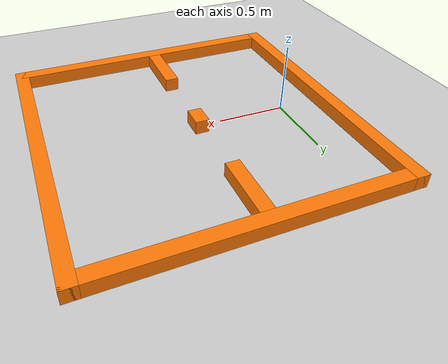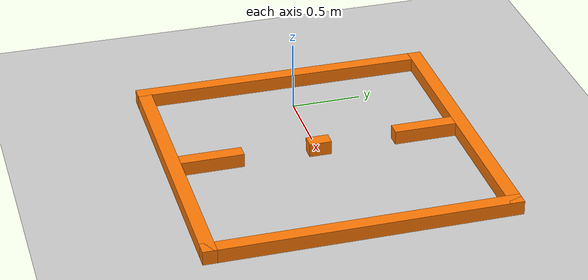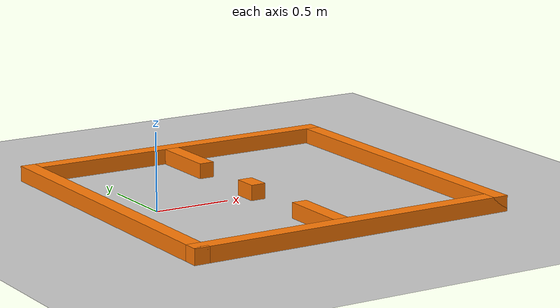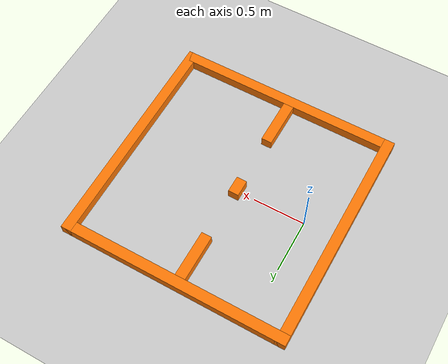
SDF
<sdf version="1.7">
 <world name="default">
  <light name="sun" type="directional">
   <pose>0 0 10 0 -0 0</pose>
   <diffuse>0.8 0.8 0.8 1</diffuse>
   <specular>0.2 0.2 0.2 1</specular>
   <attenuation>
    <range>1000</range>
    <constant>0.9</constant>
    <linear>0.01</linear>
    <quadratic>0.001</quadratic>
   </attenuation>
   <direction>-0.5 0.1 -0.9</direction>
   <spot><inner_angle>0</inner_angle><outer_angle>0</outer_angle><falloff>0</falloff></spot>
  </light>
  <model name="ground_plane">
   <static>1</static>
   <link name="link">
    <collision name="collision">
     <geometry><plane><normal>0 0 1</normal><size>100 100</size></plane></geometry>
     <surface>
      <contact><collide_bitmask>65535</collide_bitmask></contact>
      <friction><ode><mu>100</mu><mu2>50</mu2></ode></friction>
     </surface>
    </collision>
    <visual name="visual">
     <cast_shadows>0</cast_shadows>
     <geometry><plane><normal>0 0 1</normal><size>100 100</size></plane></geometry>
     <material>
      <script><uri>file://media/materials/scripts/gazebo.material</uri><name>Gazebo/Grey</name></script>
     </material>
    </visual>
   </link>
  </model>
  <gravity>0 0 -9.8</gravity>
  <magnetic_field>6e-06 2.3e-05 -4.2e-05</magnetic_field>
  <atmosphere type="adiabatic"/>
  <physics type="ode">
   <max_step_size>0.001</max_step_size>
   <real_time_factor>1</real_time_factor>
   <real_time_update_rate>1000</real_time_update_rate>
  </physics>
  <scene><ambient>0.4 0.4 0.4 1</ambient><background>0.7 0.7 0.7 1</background><shadows>1</shadows></scene>
  <audio><device>default</device></audio>
  <spherical_coordinates>
   <surface_model>EARTH_WGS84</surface_model>
   <latitude_deg>0</latitude_deg>
   <longitude_deg>0</longitude_deg>
   <elevation>0</elevation>
   <heading_deg>0</heading_deg>
  </spherical_coordinates>
  <model name="SecondWorld">
   <pose>0.725 0 0 0 -0 0</pose>
   <link name="Wall_11">
    <collision name="Wall_11_Collision">
     <geometry><box><size>2.2 0.1 0.1</size></box></geometry>
     <pose>0 0 0.05 0 -0 0</pose>
    </collision>
    <visual name="Wall_11_Visual">
     <pose>0 0 0.05 0 -0 0</pose>
     <geometry><box><size>2.2 0.1 0.1</size></box></geometry>
     <material>
      <script><uri>file://media/materials/scripts/gazebo.material</uri><name>Gazebo/Grey</name></script>
      <ambient>0.996078 0.47451 0.0196078 1</ambient>
     </material>
     <meta><layer>0</layer></meta>
    </visual>
    <pose>-1.05 0 0 0 -0 1.5708</pose>
   </link>
   <link name="Wall_13">
    <collision name="Wall_13_Collision">
     <geometry><box><size>2.2 0.1 0.1</size></box></geometry>
     <pose>0 0 0.05 0 -0 0</pose>
    </collision>
    <visual name="Wall_13_Visual">
     <pose>0 0 0.05 0 -0 0</pose>
     <geometry><box><size>2.2 0.1 0.1</size></box></geometry>
     <material>
      <script><uri>file://media/materials/scripts/gazebo.material</uri><name>Gazebo/Grey</name></script>
      <ambient>0.996078 0.47451 0.0196078 1</ambient>
     </material>
     <meta><layer>0</layer></meta>
    </visual>
    <pose>0 1.05 0 0 -0 0</pose>
   </link>
   <link name="Wall_14">
    <collision name="Wall_14_Collision">
     <geometry><box><size>2.2 0.1 0.1</size></box></geometry>
     <pose>0 0 0.05 0 -0 0</pose>
    </collision>
    <visual name="Wall_14_Visual">
     <pose>0 0 0.05 0 -0 0</pose>
     <geometry><box><size>2.2 0.1 0.1</size></box></geometry>
     <material>
      <script><uri>file://media/materials/scripts/gazebo.material</uri><name>Gazebo/Grey</name></script>
      <ambient>0.996078 0.47451 0.0196078 1</ambient>
     </material>
     <meta><layer>0</layer></meta>
    </visual>
    <pose>1.05 0 0 0 -0 -1.5708</pose>
   </link>
   <link name="Wall_19">
    <collision name="Wall_19_Collision">
     <geometry><box><size>0.45 0.1 0.1</size></box></geometry>
     <pose>0 0 0.05 0 -0 0</pose>
    </collision>
    <visual name="Wall_19_Visual">
     <pose>0 0 0.05 0 -0 0</pose>
     <geometry><box><size>0.45 0.1 0.1</size></box></geometry>
     <material>
      <script><uri>file://media/materials/scripts/gazebo.material</uri><name>Gazebo/Grey</name></script>
      <ambient>0.996078 0.47451 0.0196078 1</ambient>
     </material>
     <meta><layer>0</layer></meta>
    </visual>
    <pose>-0.05 0.775 0 0 -0 1.5708</pose>
   </link>
   <link name="Wall_21">
    <collision name="Wall_21_Collision">
     <geometry><box><size>0.45 0.1 0.1</size></box></geometry>
     <pose>0 0 0.05 0 -0 0</pose>
    </collision>
    <visual name="Wall_21_Visual">
     <pose>0 0 0.05 0 -0 0</pose>
     <geometry><box><size>0.45 0.1 0.1</size></box></geometry>
     <material>
      <script><uri>file://media/materials/scripts/gazebo.material</uri><name>Gazebo/Grey</name></script>
      <ambient>0.996078 0.47451 0.0196078 1</ambient>
     </material>
     <meta><layer>0</layer></meta>
    </visual>
    <pose>-0.05 -0.775 0 0 -0 -1.5708</pose>
   </link>
   <link name="Wall_23">
    <collision name="Wall_23_Collision">
     <geometry><box><size>0.16 0.1 0.1</size></box></geometry>
     <pose>0 0 0.05 0 -0 0</pose>
    </collision>
    <visual name="Wall_23_Visual">
     <pose>0 0 0.05 0 -0 0</pose>
     <geometry><box><size>0.16 0.1 0.1</size></box></geometry>
     <material>
      <script><uri>file://media/materials/scripts/gazebo.material</uri><name>Gazebo/Grey</name></script>
      <ambient>0.996078 0.47451 0.0196078 1</ambient>
     </material>
     <meta><layer>0</layer></meta>
    </visual>
    <pose>-0.05 0 0 0 -0 1.5708</pose>
   </link>
   <link name="Wall_5">
    <collision name="Wall_5_Collision">
     <geometry><box><size>2.2 0.1 0.1</size></box></geometry>
     <pose>0 0 0.05 0 -0 0</pose>
    </collision>
    <visual name="Wall_5_Visual">
     <pose>0 0 0.05 0 -0 0</pose>
     <geometry><box><size>2.2 0.1 0.1</size></box></geometry>
     <material>
      <script><uri>file://media/materials/scripts/gazebo.material</uri><name>Gazebo/Grey</name></script>
      <ambient>0.996078 0.47451 0.0196078 1</ambient>
     </material>
     <meta><layer>0</layer></meta>
    </visual>
    <pose>0 -1.05 0 0 -0 0</pose>
   </link>
   <static>1</static>
  </model>
 </world>
</sdf>
